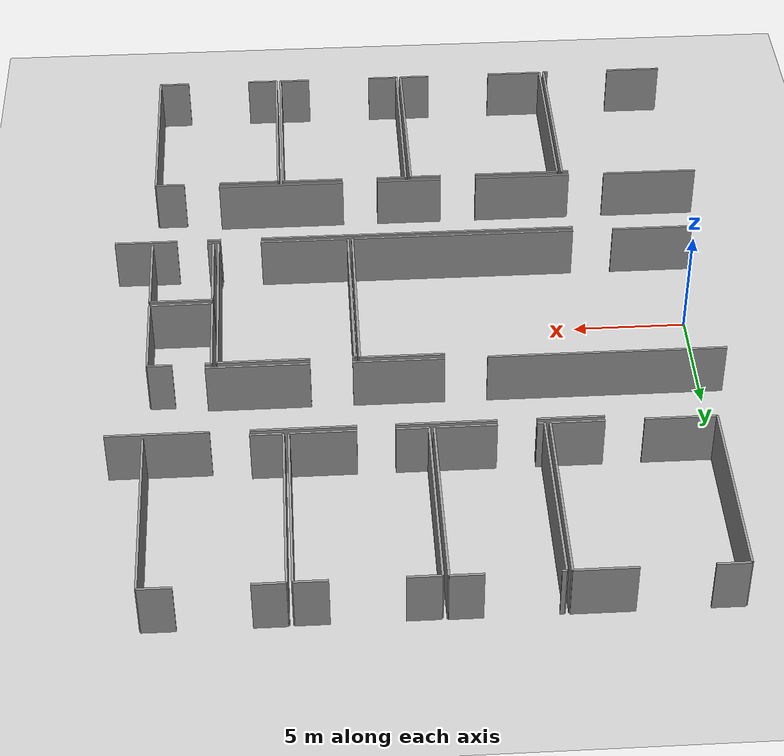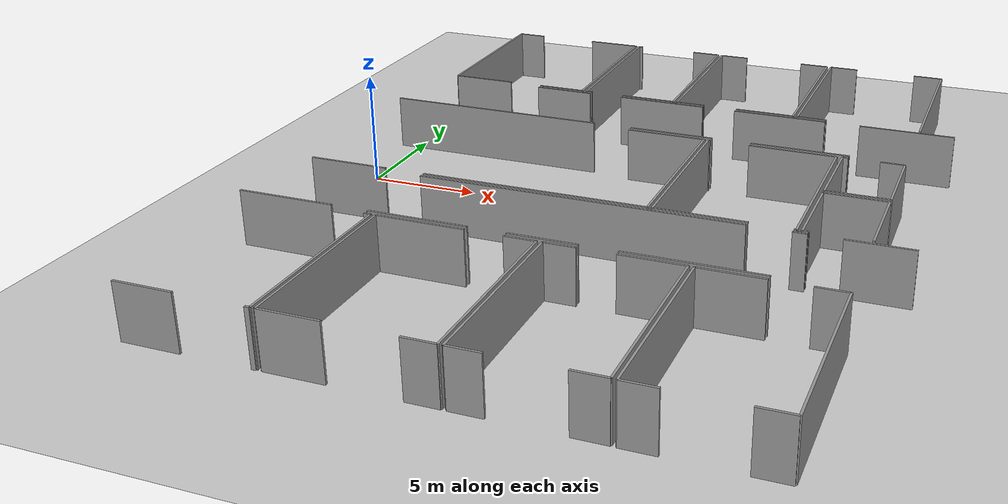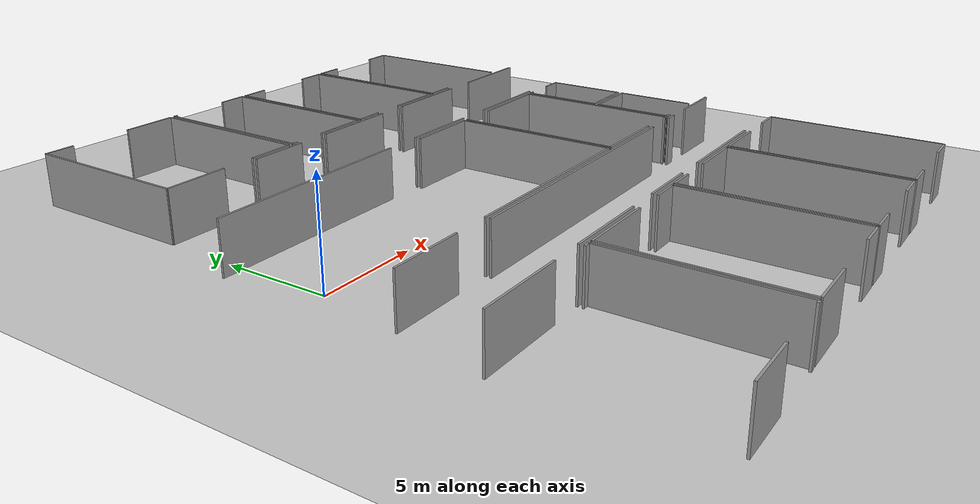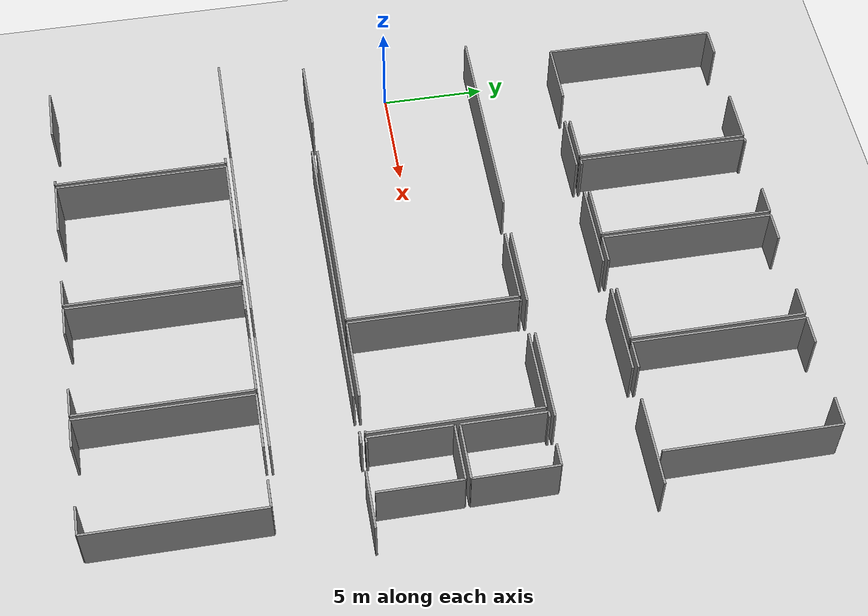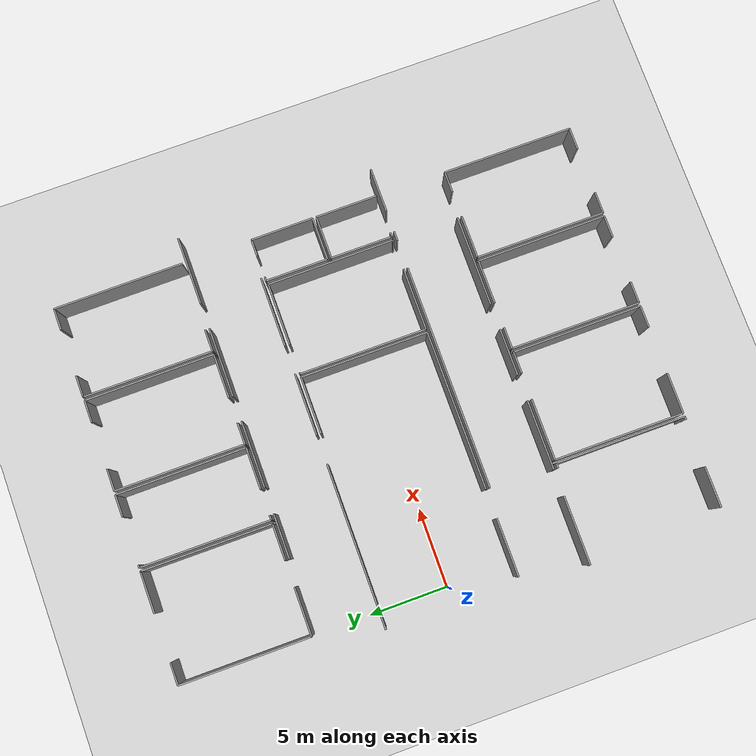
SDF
<sdf version="1.6">
 <world name="default">
  <model name="ground_plane">
   <static>1</static>
   <link name="link">
    <collision name="collision">
     <geometry><plane><normal>0 0 1</normal><size>100 100</size></plane></geometry>
     <surface><friction><ode><mu>100</mu><mu2>50</mu2></ode></friction></surface>
    </collision>
    <visual name="visual">
     <cast_shadows>0</cast_shadows>
     <geometry><plane><normal>0 0 1</normal><size>100 100</size></plane></geometry>
     <material>
      <script><uri>file://media/materials/scripts/gazebo.material</uri><name>Gazebo/Grey</name></script>
     </material>
    </visual>
   </link>
  </model>
  <model name="50041184">
   <static>1</static>
   <link name="Wall_55">
    <collision name="Wall_55_Collision">
     <geometry><box><size>4.4750255489 0.1 2.5</size></box></geometry>
     <pose>2.23751277445 0 1.25 0 0 0</pose>
    </collision>
    <visual name="Wall_55_Visual">
     <pose>2.23751277445 0 1.25 0 0 0</pose>
     <geometry><box><size>4.4750255489 0.1 2.5</size></box></geometry>
     <material>
      <script><uri>file://media/materials/scripts/gazebo.material</uri><name>Gazebo/Grey</name></script>
      <ambient>1 1 1 1</ambient>
     </material>
    </visual>
    <pose>93.0150373554 -12.4580902749 0 0 0 3.14159265359</pose>
   </link>
   <link name="Wall_56">
    <collision name="Wall_56_Collision">
     <geometry><box><size>3.95173319961 0.1 2.5</size></box></geometry>
     <pose>1.97586659981 0 1.25 0 0 0</pose>
    </collision>
    <visual name="Wall_56_Visual">
     <pose>1.97586659981 0 1.25 0 0 0</pose>
     <geometry><box><size>3.95173319961 0.1 2.5</size></box></geometry>
     <material>
      <script><uri>file://media/materials/scripts/gazebo.material</uri><name>Gazebo/Grey</name></script>
      <ambient>1 1 1 1</ambient>
     </material>
    </visual>
    <pose>86.71978723 -12.4580902749 0 0 0 3.14159265359</pose>
   </link>
   <link name="Wall_57">
    <collision name="Wall_57_Collision">
     <geometry><box><size>10.3277242115 0.1 2.5</size></box></geometry>
     <pose>5.16386210574 0 1.25 0 0 0</pose>
    </collision>
    <visual name="Wall_57_Visual">
     <pose>5.16386210574 0 1.25 0 0 0</pose>
     <geometry><box><size>10.3277242115 0.1 2.5</size></box></geometry>
     <material>
      <script><uri>file://media/materials/scripts/gazebo.material</uri><name>Gazebo/Grey</name></script>
      <ambient>1 1 1 1</ambient>
     </material>
    </visual>
    <pose>80.9380542208 -12.4580902749 0 0 0 3.14159265359</pose>
   </link>
   <link name="Wall_66">
    <collision name="Wall_66_Collision">
     <geometry><box><size>2.83392894548 0.1 2.5</size></box></geometry>
     <pose>1.41696447274 0 1.25 0 0 0</pose>
    </collision>
    <visual name="Wall_66_Visual">
     <pose>1.41696447274 0 1.25 0 0 0</pose>
     <geometry><box><size>2.83392894548 0.1 2.5</size></box></geometry>
     <material>
      <script><uri>file://media/materials/scripts/gazebo.material</uri><name>Gazebo/Grey</name></script>
      <ambient>1 1 1 1</ambient>
     </material>
    </visual>
    <pose>76.3963793552 -8.4970896465 0 0 0 0.0</pose>
   </link>
   <link name="Wall_67">
    <collision name="Wall_67_Collision">
     <geometry><box><size>4.22366241169 0.1 2.5</size></box></geometry>
     <pose>2.11183120584 0 1.25 0 0 0</pose>
    </collision>
    <visual name="Wall_67_Visual">
     <pose>2.11183120584 0 1.25 0 0 0</pose>
     <geometry><box><size>4.22366241169 0.1 2.5</size></box></geometry>
     <material>
      <script><uri>file://media/materials/scripts/gazebo.material</uri><name>Gazebo/Grey</name></script>
      <ambient>1 1 1 1</ambient>
     </material>
    </visual>
    <pose>80.8800375775 -8.4970896465 0 0 0 0.0</pose>
   </link>
   <link name="Wall_68">
    <collision name="Wall_68_Collision">
     <geometry><box><size>4.4171358567 0.1 2.5</size></box></geometry>
     <pose>2.20856792835 0 1.25 0 0 0</pose>
    </collision>
    <visual name="Wall_68_Visual">
     <pose>2.20856792835 0 1.25 0 0 0</pose>
     <geometry><box><size>4.4171358567 0.1 2.5</size></box></geometry>
     <material>
      <script><uri>file://media/materials/scripts/gazebo.material</uri><name>Gazebo/Grey</name></script>
      <ambient>1 1 1 1</ambient>
     </material>
    </visual>
    <pose>86.6980785954 -8.4970896465 0 0 0 0.0</pose>
   </link>
   <link name="Wall_69">
    <collision name="Wall_69_Collision">
     <geometry><box><size>4.34896312706 0.1 2.5</size></box></geometry>
     <pose>2.17448156353 0 1.25 0 0 0</pose>
    </collision>
    <visual name="Wall_69_Visual">
     <pose>2.17448156353 0 1.25 0 0 0</pose>
     <geometry><box><size>4.34896312706 0.1 2.5</size></box></geometry>
     <material>
      <script><uri>file://media/materials/scripts/gazebo.material</uri><name>Gazebo/Grey</name></script>
      <ambient>1 1 1 1</ambient>
     </material>
    </visual>
    <pose>92.7655784843 -8.4970896465 0 0 0 0.0</pose>
   </link>
   <link name="Wall_87">
    <collision name="Wall_87_Collision">
     <geometry><box><size>2.29121308104 0.1 2.5</size></box></geometry>
     <pose>1.14560654052 0 1.25 0 0 0</pose>
    </collision>
    <visual name="Wall_87_Visual">
     <pose>1.14560654052 0 1.25 0 0 0</pose>
     <geometry><box><size>2.29121308104 0.1 2.5</size></box></geometry>
     <material>
      <script><uri>file://media/materials/scripts/gazebo.material</uri><name>Gazebo/Grey</name></script>
      <ambient>1 1 1 1</ambient>
     </material>
    </visual>
    <pose>78.6938130391 -8.24306053662 0 0 0 3.14159265359</pose>
   </link>
   <link name="Wall_88">
    <collision name="Wall_88_Collision">
     <geometry><box><size>3.03578116173 0.1 2.5</size></box></geometry>
     <pose>1.51789058086 0 1.25 0 0 0</pose>
    </collision>
    <visual name="Wall_88_Visual">
     <pose>1.51789058086 0 1.25 0 0 0</pose>
     <geometry><box><size>3.03578116173 0.1 2.5</size></box></geometry>
     <material>
      <script><uri>file://media/materials/scripts/gazebo.material</uri><name>Gazebo/Grey</name></script>
      <ambient>1 1 1 1</ambient>
     </material>
    </visual>
    <pose>74.7606146971 -8.24306053662 0 0 0 3.14159265359</pose>
   </link>
   <link name="Wall_89">
    <collision name="Wall_89_Collision">
     <geometry><box><size>8.22858811357 0.1 2.5</size></box></geometry>
     <pose>4.11429405679 0 1.25 0 0 0</pose>
    </collision>
    <visual name="Wall_89_Visual">
     <pose>4.11429405679 0 1.25 0 0 0</pose>
     <geometry><box><size>8.22858811357 0.1 2.5</size></box></geometry>
     <material>
      <script><uri>file://media/materials/scripts/gazebo.material</uri><name>Gazebo/Grey</name></script>
      <ambient>1 1 1 1</ambient>
     </material>
    </visual>
    <pose>71.7248335354 -8.24306053662 0 0 0 1.57079632679</pose>
   </link>
   <link name="Wall_90">
    <collision name="Wall_90_Collision">
     <geometry><box><size>1.39696967773 0.1 2.5</size></box></geometry>
     <pose>0.698484838867 0 1.25 0 0 0</pose>
    </collision>
    <visual name="Wall_90_Visual">
     <pose>0.698484838867 0 1.25 0 0 0</pose>
     <geometry><box><size>1.39696967773 0.1 2.5</size></box></geometry>
     <material>
      <script><uri>file://media/materials/scripts/gazebo.material</uri><name>Gazebo/Grey</name></script>
      <ambient>1 1 1 1</ambient>
     </material>
    </visual>
    <pose>71.7248335354 -0.0144724230518 0 0 0 0.0</pose>
   </link>
   <link name="Wall_91">
    <collision name="Wall_91_Collision">
     <geometry><box><size>2.612526263 0.1 2.5</size></box></geometry>
     <pose>1.3062631315 0 1.25 0 0 0</pose>
    </collision>
    <visual name="Wall_91_Visual">
     <pose>1.3062631315 0 1.25 0 0 0</pose>
     <geometry><box><size>2.612526263 0.1 2.5</size></box></geometry>
     <material>
      <script><uri>file://media/materials/scripts/gazebo.material</uri><name>Gazebo/Grey</name></script>
      <ambient>1 1 1 1</ambient>
     </material>
    </visual>
    <pose>76.0971556611 -0.0144724230518 0 0 0 0.0</pose>
   </link>
   <link name="Wall_92">
    <collision name="Wall_92_Collision">
     <geometry><box><size>8.22860341518 0.1 2.5</size></box></geometry>
     <pose>4.11430170759 0 1.25 0 0 0</pose>
    </collision>
    <visual name="Wall_92_Visual">
     <pose>4.11430170759 0 1.25 0 0 0</pose>
     <geometry><box><size>8.22860341518 0.1 2.5</size></box></geometry>
     <material>
      <script><uri>file://media/materials/scripts/gazebo.material</uri><name>Gazebo/Grey</name></script>
      <ambient>1 1 1 1</ambient>
     </material>
    </visual>
    <pose>78.7096819241 -0.0144724230518 0 0 0 -1.57272483081</pose>
   </link>
   <link name="Wall_99">
    <collision name="Wall_99_Collision">
     <geometry><box><size>2.62750649037 0.1 2.5</size></box></geometry>
     <pose>1.31375324519 0 1.25 0 0 0</pose>
    </collision>
    <visual name="Wall_99_Visual">
     <pose>1.31375324519 0 1.25 0 0 0</pose>
     <geometry><box><size>2.62750649037 0.1 2.5</size></box></geometry>
     <material>
      <script><uri>file://media/materials/scripts/gazebo.material</uri><name>Gazebo/Grey</name></script>
      <ambient>1 1 1 1</ambient>
     </material>
    </visual>
    <pose>83.5086866276 -8.24559955821 0 0 0 3.14159265359</pose>
   </link>
   <link name="Wall_100">
    <collision name="Wall_100_Collision">
     <geometry><box><size>0.303032226532 0.1 2.5</size></box></geometry>
     <pose>0.151516113266 0 1.25 0 0 0</pose>
    </collision>
    <visual name="Wall_100_Visual">
     <pose>0.151516113266 0 1.25 0 0 0</pose>
     <geometry><box><size>0.303032226532 0.1 2.5</size></box></geometry>
     <material>
      <script><uri>file://media/materials/scripts/gazebo.material</uri><name>Gazebo/Grey</name></script>
      <ambient>1 1 1 1</ambient>
     </material>
    </visual>
    <pose>79.2303083007 -8.24559955821 0 0 0 3.14159265359</pose>
   </link>
   <link name="Wall_101">
    <collision name="Wall_101_Collision">
     <geometry><box><size>8.23252359703 0.1 2.5</size></box></geometry>
     <pose>4.11626179852 0 1.25 0 0 0</pose>
    </collision>
    <visual name="Wall_101_Visual">
     <pose>4.11626179852 0 1.25 0 0 0</pose>
     <geometry><box><size>8.23252359703 0.1 2.5</size></box></geometry>
     <material>
      <script><uri>file://media/materials/scripts/gazebo.material</uri><name>Gazebo/Grey</name></script>
      <ambient>1 1 1 1</ambient>
     </material>
    </visual>
    <pose>78.9272760742 -8.24559955821 0 0 0 1.57079632679</pose>
   </link>
   <link name="Wall_102">
    <collision name="Wall_102_Collision">
     <geometry><box><size>0.183063456497 0.1 2.5</size></box></geometry>
     <pose>0.0915317282485 0 1.25 0 0 0</pose>
    </collision>
    <visual name="Wall_102_Visual">
     <pose>0.0915317282485 0 1.25 0 0 0</pose>
     <geometry><box><size>0.183063456497 0.1 2.5</size></box></geometry>
     <material>
      <script><uri>file://media/materials/scripts/gazebo.material</uri><name>Gazebo/Grey</name></script>
      <ambient>1 1 1 1</ambient>
     </material>
    </visual>
    <pose>78.9272760742 -0.0130759611784 0 0 0 0.0</pose>
   </link>
   <link name="Wall_103">
    <collision name="Wall_103_Collision">
     <geometry><box><size>1.39404980291 0.1 2.5</size></box></geometry>
     <pose>0.697024901454 0 1.25 0 0 0</pose>
    </collision>
    <visual name="Wall_103_Visual">
     <pose>0.697024901454 0 1.25 0 0 0</pose>
     <geometry><box><size>1.39404980291 0.1 2.5</size></box></geometry>
     <material>
      <script><uri>file://media/materials/scripts/gazebo.material</uri><name>Gazebo/Grey</name></script>
      <ambient>1 1 1 1</ambient>
     </material>
    </visual>
    <pose>82.0961019671 -0.0130759611784 0 0 0 0.0</pose>
   </link>
   <link name="Wall_104">
    <collision name="Wall_104_Collision">
     <geometry><box><size>8.23254446187 0.1 2.5</size></box></geometry>
     <pose>4.11627223093 0 1.25 0 0 0</pose>
    </collision>
    <visual name="Wall_104_Visual">
     <pose>4.11627223093 0 1.25 0 0 0</pose>
     <geometry><box><size>8.23254446187 0.1 2.5</size></box></geometry>
     <material>
      <script><uri>file://media/materials/scripts/gazebo.material</uri><name>Gazebo/Grey</name></script>
      <ambient>1 1 1 1</ambient>
     </material>
    </visual>
    <pose>83.49015177 -0.0130759611784 0 0 0 -1.5685449119</pose>
   </link>
   <link name="Wall_105">
    <collision name="Wall_105_Collision">
     <geometry><box><size>2.80473019722 0.1 2.5</size></box></geometry>
     <pose>1.40236509861 0 1.25 0 0 0</pose>
    </collision>
    <visual name="Wall_105_Visual">
     <pose>1.40236509861 0 1.25 0 0 0</pose>
     <geometry><box><size>2.80473019722 0.1 2.5</size></box></geometry>
     <material>
      <script><uri>file://media/materials/scripts/gazebo.material</uri><name>Gazebo/Grey</name></script>
      <ambient>1 1 1 1</ambient>
     </material>
    </visual>
    <pose>89.519439384 -8.23836334668 0 0 0 3.14159265359</pose>
   </link>
   <link name="Wall_106">
    <collision name="Wall_106_Collision">
     <geometry><box><size>1.37107165754 0.1 2.5</size></box></geometry>
     <pose>0.685535828768 0 1.25 0 0 0</pose>
    </collision>
    <visual name="Wall_106_Visual">
     <pose>0.685535828768 0 1.25 0 0 0</pose>
     <geometry><box><size>1.37107165754 0.1 2.5</size></box></geometry>
     <material>
      <script><uri>file://media/materials/scripts/gazebo.material</uri><name>Gazebo/Grey</name></script>
      <ambient>1 1 1 1</ambient>
     </material>
    </visual>
    <pose>85.0894814683 -8.23836334668 0 0 0 3.14159265359</pose>
   </link>
   <link name="Wall_107">
    <collision name="Wall_107_Collision">
     <geometry><box><size>8.20332484877 0.1 2.5</size></box></geometry>
     <pose>4.10166242438 0 1.25 0 0 0</pose>
    </collision>
    <visual name="Wall_107_Visual">
     <pose>4.10166242438 0 1.25 0 0 0</pose>
     <geometry><box><size>8.20332484877 0.1 2.5</size></box></geometry>
     <material>
      <script><uri>file://media/materials/scripts/gazebo.material</uri><name>Gazebo/Grey</name></script>
      <ambient>1 1 1 1</ambient>
     </material>
    </visual>
    <pose>83.7184098108 -8.23836334668 0 0 0 1.57079632679</pose>
   </link>
   <link name="Wall_108">
    <collision name="Wall_108_Collision">
     <geometry><box><size>1.40725271517 0.1 2.5</size></box></geometry>
     <pose>0.703626357583 0 1.25 0 0 0</pose>
    </collision>
    <visual name="Wall_108_Visual">
     <pose>0.703626357583 0 1.25 0 0 0</pose>
     <geometry><box><size>1.40725271517 0.1 2.5</size></box></geometry>
     <material>
      <script><uri>file://media/materials/scripts/gazebo.material</uri><name>Gazebo/Grey</name></script>
      <ambient>1 1 1 1</ambient>
     </material>
    </visual>
    <pose>83.7184098108 -0.0350384979148 0 0 0 0.0</pose>
   </link>
   <link name="Wall_109">
    <collision name="Wall_109_Collision">
     <geometry><box><size>1.39404980291 0.1 2.5</size></box></geometry>
     <pose>0.697024901454 0 1.25 0 0 0</pose>
    </collision>
    <visual name="Wall_109_Visual">
     <pose>0.697024901454 0 1.25 0 0 0</pose>
     <geometry><box><size>1.39404980291 0.1 2.5</size></box></geometry>
     <material>
      <script><uri>file://media/materials/scripts/gazebo.material</uri><name>Gazebo/Grey</name></script>
      <ambient>1 1 1 1</ambient>
     </material>
    </visual>
    <pose>88.1005071696 -0.0350384979148 0 0 0 0.0</pose>
   </link>
   <link name="Wall_110">
    <collision name="Wall_110_Collision">
     <geometry><box><size>8.20336258548 0.1 2.5</size></box></geometry>
     <pose>4.10168129274 0 1.25 0 0 0</pose>
    </collision>
    <visual name="Wall_110_Visual">
     <pose>4.10168129274 0 1.25 0 0 0</pose>
     <geometry><box><size>8.20336258548 0.1 2.5</size></box></geometry>
     <material>
      <script><uri>file://media/materials/scripts/gazebo.material</uri><name>Gazebo/Grey</name></script>
      <ambient>1 1 1 1</ambient>
     </material>
    </visual>
    <pose>89.4945569725 -0.0350384979148 0 0 0 -1.56776312554</pose>
   </link>
   <link name="Wall_112">
    <collision name="Wall_112_Collision">
     <geometry><box><size>1.39849309069 0.1 2.5</size></box></geometry>
     <pose>0.699246545344 0 1.25 0 0 0</pose>
    </collision>
    <visual name="Wall_112_Visual">
     <pose>0.699246545344 0 1.25 0 0 0</pose>
     <geometry><box><size>1.39849309069 0.1 2.5</size></box></geometry>
     <material>
      <script><uri>file://media/materials/scripts/gazebo.material</uri><name>Gazebo/Grey</name></script>
      <ambient>1 1 1 1</ambient>
     </material>
    </visual>
    <pose>91.1305755327 -8.23163493948 0 0 0 3.14159265359</pose>
   </link>
   <link name="Wall_113">
    <collision name="Wall_113_Collision">
     <geometry><box><size>8.21538520131 0.1 2.5</size></box></geometry>
     <pose>4.10769260066 0 1.25 0 0 0</pose>
    </collision>
    <visual name="Wall_113_Visual">
     <pose>4.10769260066 0 1.25 0 0 0</pose>
     <geometry><box><size>8.21538520131 0.1 2.5</size></box></geometry>
     <material>
      <script><uri>file://media/materials/scripts/gazebo.material</uri><name>Gazebo/Grey</name></script>
      <ambient>1 1 1 1</ambient>
     </material>
    </visual>
    <pose>89.732082442 -8.23163493948 0 0 0 1.57079632679</pose>
   </link>
   <link name="Wall_114">
    <collision name="Wall_114_Collision">
     <geometry><box><size>1.37602274963 0.1 2.5</size></box></geometry>
     <pose>0.688011374817 0 1.25 0 0 0</pose>
    </collision>
    <visual name="Wall_114_Visual">
     <pose>0.688011374817 0 1.25 0 0 0</pose>
     <geometry><box><size>1.37602274963 0.1 2.5</size></box></geometry>
     <material>
      <script><uri>file://media/materials/scripts/gazebo.material</uri><name>Gazebo/Grey</name></script>
      <ambient>1 1 1 1</ambient>
     </material>
    </visual>
    <pose>89.732082442 -0.0162497381634 0 0 0 0.0</pose>
   </link>
   <link name="Wall_115">
    <collision name="Wall_115_Collision">
     <geometry><box><size>1.38859090649 0.1 2.5</size></box></geometry>
     <pose>0.694295453247 0 1.25 0 0 0</pose>
    </collision>
    <visual name="Wall_115_Visual">
     <pose>0.694295453247 0 1.25 0 0 0</pose>
     <geometry><box><size>1.38859090649 0.1 2.5</size></box></geometry>
     <material>
      <script><uri>file://media/materials/scripts/gazebo.material</uri><name>Gazebo/Grey</name></script>
      <ambient>1 1 1 1</ambient>
     </material>
    </visual>
    <pose>94.0938676281 -0.0162497381634 0 0 0 0.0</pose>
   </link>
   <link name="Wall_116">
    <collision name="Wall_116_Collision">
     <geometry><box><size>8.21543663936 0.1 2.5</size></box></geometry>
     <pose>4.10771831968 0 1.25 0 0 0</pose>
    </collision>
    <visual name="Wall_116_Visual">
     <pose>4.10771831968 0 1.25 0 0 0</pose>
     <geometry><box><size>8.21543663936 0.1 2.5</size></box></geometry>
     <material>
      <script><uri>file://media/materials/scripts/gazebo.material</uri><name>Gazebo/Grey</name></script>
      <ambient>1 1 1 1</ambient>
     </material>
    </visual>
    <pose>95.4824585346 -0.0162497381634 0 0 0 -1.56725763991</pose>
   </link>
   <link name="Wall_216">
    <collision name="Wall_216_Collision">
     <geometry><box><size>2.75458452085 0.1 2.5</size></box></geometry>
     <pose>1.37729226043 0 1.25 0 0 0</pose>
    </collision>
    <visual name="Wall_216_Visual">
     <pose>1.37729226043 0 1.25 0 0 0</pose>
     <geometry><box><size>2.75458452085 0.1 2.5</size></box></geometry>
     <material>
      <script><uri>file://media/materials/scripts/gazebo.material</uri><name>Gazebo/Grey</name></script>
      <ambient>1 1 1 1</ambient>
     </material>
    </visual>
    <pose>95.5044210713 -16.6690575787 0 0 0 3.14159265359</pose>
   </link>
   <link name="Wall_217">
    <collision name="Wall_217_Collision">
     <geometry><box><size>3.97331488311 0.1 2.5</size></box></geometry>
     <pose>1.98665744155 0 1.25 0 0 0</pose>
    </collision>
    <visual name="Wall_217_Visual">
     <pose>1.98665744155 0 1.25 0 0 0</pose>
     <geometry><box><size>3.97331488311 0.1 2.5</size></box></geometry>
     <material>
      <script><uri>file://media/materials/scripts/gazebo.material</uri><name>Gazebo/Grey</name></script>
      <ambient>1 1 1 1</ambient>
     </material>
    </visual>
    <pose>92.7498365505 -16.6690575787 0 0 0 1.57079632679</pose>
   </link>
   <link name="Wall_218">
    <collision name="Wall_218_Collision">
     <geometry><box><size>0.25872629982 0.1 2.5</size></box></geometry>
     <pose>0.12936314991 0 1.25 0 0 0</pose>
    </collision>
    <visual name="Wall_218_Visual">
     <pose>0.12936314991 0 1.25 0 0 0</pose>
     <geometry><box><size>0.25872629982 0.1 2.5</size></box></geometry>
     <material>
      <script><uri>file://media/materials/scripts/gazebo.material</uri><name>Gazebo/Grey</name></script>
      <ambient>1 1 1 1</ambient>
     </material>
    </visual>
    <pose>92.7498365505 -12.6957426956 0 0 0 0.0</pose>
   </link>
   <link name="Wall_219">
    <collision name="Wall_219_Collision">
     <geometry><box><size>1.06550040942 0.1 2.5</size></box></geometry>
     <pose>0.532750204709 0 1.25 0 0 0</pose>
    </collision>
    <visual name="Wall_219_Visual">
     <pose>0.532750204709 0 1.25 0 0 0</pose>
     <geometry><box><size>1.06550040942 0.1 2.5</size></box></geometry>
     <material>
      <script><uri>file://media/materials/scripts/gazebo.material</uri><name>Gazebo/Grey</name></script>
      <ambient>1 1 1 1</ambient>
     </material>
    </visual>
    <pose>94.4172120273 -12.6957426956 0 0 0 0.0</pose>
   </link>
   <link name="Wall_220">
    <collision name="Wall_220_Collision">
     <geometry><box><size>3.9733741864 0.1 2.5</size></box></geometry>
     <pose>1.9866870932 0 1.25 0 0 0</pose>
    </collision>
    <visual name="Wall_220_Visual">
     <pose>1.9866870932 0 1.25 0 0 0</pose>
     <geometry><box><size>3.9733741864 0.1 2.5</size></box></geometry>
     <material>
      <script><uri>file://media/materials/scripts/gazebo.material</uri><name>Gazebo/Grey</name></script>
      <ambient>1 1 1 1</ambient>
     </material>
    </visual>
    <pose>95.4827124368 -12.6957426956 0 0 0 -1.56533277326</pose>
   </link>
   <link name="Wall_222">
    <collision name="Wall_222_Collision">
     <geometry><box><size>0.269009337252 0.1 2.5</size></box></geometry>
     <pose>0.134504668626 0 1.25 0 0 0</pose>
    </collision>
    <visual name="Wall_222_Visual">
     <pose>0.134504668626 0 1.25 0 0 0</pose>
     <geometry><box><size>0.269009337252 0.1 2.5</size></box></geometry>
     <material>
      <script><uri>file://media/materials/scripts/gazebo.material</uri><name>Gazebo/Grey</name></script>
      <ambient>1 1 1 1</ambient>
     </material>
    </visual>
    <pose>93.0126252848 -20.8581892968 0 0 0 3.14159265359</pose>
   </link>
   <link name="Wall_223">
    <collision name="Wall_223_Collision">
     <geometry><box><size>3.94690905859 0.1 2.5</size></box></geometry>
     <pose>1.9734545293 0 1.25 0 0 0</pose>
    </collision>
    <visual name="Wall_223_Visual">
     <pose>1.9734545293 0 1.25 0 0 0</pose>
     <geometry><box><size>3.94690905859 0.1 2.5</size></box></geometry>
     <material>
      <script><uri>file://media/materials/scripts/gazebo.material</uri><name>Gazebo/Grey</name></script>
      <ambient>1 1 1 1</ambient>
     </material>
    </visual>
    <pose>92.7436159476 -20.8581892968 0 0 0 1.57079632679</pose>
   </link>
   <link name="Wall_224">
    <collision name="Wall_224_Collision">
     <geometry><box><size>2.75280720574 0.1 2.5</size></box></geometry>
     <pose>1.37640360287 0 1.25 0 0 0</pose>
    </collision>
    <visual name="Wall_224_Visual">
     <pose>1.37640360287 0 1.25 0 0 0</pose>
     <geometry><box><size>2.75280720574 0.1 2.5</size></box></geometry>
     <material>
      <script><uri>file://media/materials/scripts/gazebo.material</uri><name>Gazebo/Grey</name></script>
      <ambient>1 1 1 1</ambient>
     </material>
    </visual>
    <pose>92.7436159476 -16.9112802382 0 0 0 0.0</pose>
   </link>
   <link name="Wall_225">
    <collision name="Wall_225_Collision">
     <geometry><box><size>3.94691716198 0.1 2.5</size></box></geometry>
     <pose>1.97345858099 0 1.25 0 0 0</pose>
    </collision>
    <visual name="Wall_225_Visual">
     <pose>1.97345858099 0 1.25 0 0 0</pose>
     <geometry><box><size>3.94691716198 0.1 2.5</size></box></geometry>
     <material>
      <script><uri>file://media/materials/scripts/gazebo.material</uri><name>Gazebo/Grey</name></script>
      <ambient>1 1 1 1</ambient>
     </material>
    </visual>
    <pose>95.4964231533 -16.9112802382 0 0 0 -1.56876995453</pose>
   </link>
   <link name="Wall_226">
    <collision name="Wall_226_Collision">
     <geometry><box><size>0.101053059204 0.1 2.5</size></box></geometry>
     <pose>0.0505265296018 0 1.25 0 0 0</pose>
    </collision>
    <visual name="Wall_226_Visual">
     <pose>0.0505265296018 0 1.25 0 0 0</pose>
     <geometry><box><size>0.101053059204 0.1 2.5</size></box></geometry>
     <material>
      <script><uri>file://media/materials/scripts/gazebo.material</uri><name>Gazebo/Grey</name></script>
      <ambient>1 1 1 1</ambient>
     </material>
    </visual>
    <pose>92.5165004665 -20.8411778521 0 0 0 3.14159265359</pose>
   </link>
   <link name="Wall_227">
    <collision name="Wall_227_Collision">
     <geometry><box><size>3.97001415505 0.1 2.5</size></box></geometry>
     <pose>1.98500707752 0 1.25 0 0 0</pose>
    </collision>
    <visual name="Wall_227_Visual">
     <pose>1.98500707752 0 1.25 0 0 0</pose>
     <geometry><box><size>3.97001415505 0.1 2.5</size></box></geometry>
     <material>
      <script><uri>file://media/materials/scripts/gazebo.material</uri><name>Gazebo/Grey</name></script>
      <ambient>1 1 1 1</ambient>
     </material>
    </visual>
    <pose>90.5850667445 -20.8411778521 0 0 0 3.14159265359</pose>
   </link>
   <link name="Wall_228">
    <collision name="Wall_228_Collision">
     <geometry><box><size>8.0916078989 0.1 2.5</size></box></geometry>
     <pose>4.04580394945 0 1.25 0 0 0</pose>
    </collision>
    <visual name="Wall_228_Visual">
     <pose>4.04580394945 0 1.25 0 0 0</pose>
     <geometry><box><size>8.0916078989 0.1 2.5</size></box></geometry>
     <material>
      <script><uri>file://media/materials/scripts/gazebo.material</uri><name>Gazebo/Grey</name></script>
      <ambient>1 1 1 1</ambient>
     </material>
    </visual>
    <pose>86.6150525895 -20.8411778521 0 0 0 1.57079632679</pose>
   </link>
   <link name="Wall_229">
    <collision name="Wall_229_Collision">
     <geometry><box><size>0.0945785541542 0.1 2.5</size></box></geometry>
     <pose>0.0472892770771 0 1.25 0 0 0</pose>
    </collision>
    <visual name="Wall_229_Visual">
     <pose>0.0472892770771 0 1.25 0 0 0</pose>
     <geometry><box><size>0.0945785541542 0.1 2.5</size></box></geometry>
     <material>
      <script><uri>file://media/materials/scripts/gazebo.material</uri><name>Gazebo/Grey</name></script>
      <ambient>1 1 1 1</ambient>
     </material>
    </visual>
    <pose>86.6150525895 -12.7495699532 0 0 0 0.0</pose>
   </link>
   <link name="Wall_230">
    <collision name="Wall_230_Collision">
     <geometry><box><size>3.96188928596 0.1 2.5</size></box></geometry>
     <pose>1.98094464298 0 1.25 0 0 0</pose>
    </collision>
    <visual name="Wall_230_Visual">
     <pose>1.98094464298 0 1.25 0 0 0</pose>
     <geometry><box><size>3.96188928596 0.1 2.5</size></box></geometry>
     <material>
      <script><uri>file://media/materials/scripts/gazebo.material</uri><name>Gazebo/Grey</name></script>
      <ambient>1 1 1 1</ambient>
     </material>
    </visual>
    <pose>88.5327755949 -12.7495699532 0 0 0 0.0</pose>
   </link>
   <link name="Wall_231">
    <collision name="Wall_231_Collision">
     <geometry><box><size>8.09163736102 0.1 2.5</size></box></geometry>
     <pose>4.04581868051 0 1.25 0 0 0</pose>
    </collision>
    <visual name="Wall_231_Visual">
     <pose>4.04581868051 0 1.25 0 0 0</pose>
     <geometry><box><size>8.09163736102 0.1 2.5</size></box></geometry>
     <material>
      <script><uri>file://media/materials/scripts/gazebo.material</uri><name>Gazebo/Grey</name></script>
      <ambient>1 1 1 1</ambient>
     </material>
    </visual>
    <pose>92.4946648809 -12.7495699532 0 0 0 -1.56809778617</pose>
   </link>
   <link name="Wall_232">
    <collision name="Wall_232_Collision">
     <geometry><box><size>10.1032747031 0.1 2.5</size></box></geometry>
     <pose>5.05163735155 0 1.25 0 0 0</pose>
    </collision>
    <visual name="Wall_232_Visual">
     <pose>5.05163735155 0 1.25 0 0 0</pose>
     <geometry><box><size>10.1032747031 0.1 2.5</size></box></geometry>
     <material>
      <script><uri>file://media/materials/scripts/gazebo.material</uri><name>Gazebo/Grey</name></script>
      <ambient>1 1 1 1</ambient>
     </material>
    </visual>
    <pose>86.411296107 -20.8451133356 0 0 0 3.14159265359</pose>
   </link>
   <link name="Wall_233">
    <collision name="Wall_233_Collision">
     <geometry><box><size>3.65441377165 0.1 2.5</size></box></geometry>
     <pose>1.82720688583 0 1.25 0 0 0</pose>
    </collision>
    <visual name="Wall_233_Visual">
     <pose>1.82720688583 0 1.25 0 0 0</pose>
     <geometry><box><size>3.65441377165 0.1 2.5</size></box></geometry>
     <material>
      <script><uri>file://media/materials/scripts/gazebo.material</uri><name>Gazebo/Grey</name></script>
      <ambient>1 1 1 1</ambient>
     </material>
    </visual>
    <pose>74.4775137901 -20.8451133356 0 0 0 3.14159265359</pose>
   </link>
   <link name="Wall_236">
    <collision name="Wall_236_Collision">
     <geometry><box><size>3.64768536444 0.1 2.5</size></box></geometry>
     <pose>1.82384268222 0 1.25 0 0 0</pose>
    </collision>
    <visual name="Wall_236_Visual">
     <pose>1.82384268222 0 1.25 0 0 0</pose>
     <geometry><box><size>3.64768536444 0.1 2.5</size></box></geometry>
     <material>
      <script><uri>file://media/materials/scripts/gazebo.material</uri><name>Gazebo/Grey</name></script>
      <ambient>1 1 1 1</ambient>
     </material>
    </visual>
    <pose>82.7636107426 -12.7370017964 0 0 0 0.0</pose>
   </link>
   <link name="Wall_237">
    <collision name="Wall_237_Collision">
     <geometry><box><size>8.10811153922 0.1 2.5</size></box></geometry>
     <pose>4.05405576961 0 1.25 0 0 0</pose>
    </collision>
    <visual name="Wall_237_Visual">
     <pose>4.05405576961 0 1.25 0 0 0</pose>
     <geometry><box><size>8.10811153922 0.1 2.5</size></box></geometry>
     <material>
      <script><uri>file://media/materials/scripts/gazebo.material</uri><name>Gazebo/Grey</name></script>
      <ambient>1 1 1 1</ambient>
     </material>
    </visual>
    <pose>86.411296107 -12.7370017964 0 0 0 -1.57079632679</pose>
   </link>
   <link name="Wall_368">
    <collision name="Wall_368_Collision">
     <geometry><box><size>14.2759027809 0.1 2.5</size></box></geometry>
     <pose>7.13795139043 0 1.25 0 0 0</pose>
    </collision>
    <visual name="Wall_368_Visual">
     <pose>7.13795139043 0 1.25 0 0 0</pose>
     <geometry><box><size>14.2759027809 0.1 2.5</size></box></geometry>
     <material>
      <script><uri>file://media/materials/scripts/gazebo.material</uri><name>Gazebo/Grey</name></script>
      <ambient>1 1 1 1</ambient>
     </material>
    </visual>
    <pose>76.295326296 -21.0927948915 0 0 0 0.0</pose>
   </link>
   <link name="Wall_369">
    <collision name="Wall_369_Collision">
     <geometry><box><size>0.600986409887 0.1 2.5</size></box></geometry>
     <pose>0.300493204943 0 1.25 0 0 0</pose>
    </collision>
    <visual name="Wall_369_Visual">
     <pose>0.300493204943 0 1.25 0 0 0</pose>
     <geometry><box><size>0.600986409887 0.1 2.5</size></box></geometry>
     <material>
      <script><uri>file://media/materials/scripts/gazebo.material</uri><name>Gazebo/Grey</name></script>
      <ambient>1 1 1 1</ambient>
     </material>
    </visual>
    <pose>92.4075764404 -21.0927948915 0 0 0 0.0</pose>
   </link>
   <link name="Wall_370">
    <collision name="Wall_370_Collision">
     <geometry><box><size>2.81831396271 0.1 2.5</size></box></geometry>
     <pose>1.40915698136 0 1.25 0 0 0</pose>
    </collision>
    <visual name="Wall_370_Visual">
     <pose>1.40915698136 0 1.25 0 0 0</pose>
     <geometry><box><size>2.81831396271 0.1 2.5</size></box></geometry>
     <material>
      <script><uri>file://media/materials/scripts/gazebo.material</uri><name>Gazebo/Grey</name></script>
      <ambient>1 1 1 1</ambient>
     </material>
    </visual>
    <pose>94.3949955884 -21.0927948915 0 0 0 0.0</pose>
   </link>
   <link name="Wall_384">
    <collision name="Wall_384_Collision">
     <geometry><box><size>5.80763102938 0.1 2.5</size></box></geometry>
     <pose>2.90381551469 0 1.25 0 0 0</pose>
    </collision>
    <visual name="Wall_384_Visual">
     <pose>2.90381551469 0 1.25 0 0 0</pose>
     <geometry><box><size>5.80763102938 0.1 2.5</size></box></geometry>
     <material>
      <script><uri>file://media/materials/scripts/gazebo.material</uri><name>Gazebo/Grey</name></script>
      <ambient>1 1 1 1</ambient>
     </material>
    </visual>
    <pose>92.5165004665 -25.0634438019 0 0 0 3.14159265359</pose>
   </link>
   <link name="Wall_385">
    <collision name="Wall_385_Collision">
     <geometry><box><size>2.98550853429 0.1 2.5</size></box></geometry>
     <pose>1.49275426714 0 1.25 0 0 0</pose>
    </collision>
    <visual name="Wall_385_Visual">
     <pose>1.49275426714 0 1.25 0 0 0</pose>
     <geometry><box><size>2.98550853429 0.1 2.5</size></box></geometry>
     <material>
      <script><uri>file://media/materials/scripts/gazebo.material</uri><name>Gazebo/Grey</name></script>
      <ambient>1 1 1 1</ambient>
     </material>
    </visual>
    <pose>85.0866885446 -25.0634438019 0 0 0 3.14159265359</pose>
   </link>
   <link name="Wall_386">
    <collision name="Wall_386_Collision">
     <geometry><box><size>4.41561244374 0.1 2.5</size></box></geometry>
     <pose>2.20780622187 0 1.25 0 0 0</pose>
    </collision>
    <visual name="Wall_386_Visual">
     <pose>2.20780622187 0 1.25 0 0 0</pose>
     <geometry><box><size>4.41561244374 0.1 2.5</size></box></geometry>
     <material>
      <script><uri>file://media/materials/scripts/gazebo.material</uri><name>Gazebo/Grey</name></script>
      <ambient>1 1 1 1</ambient>
     </material>
    </visual>
    <pose>80.4376130658 -25.0634438019 0 0 0 3.14159265359</pose>
   </link>
   <link name="Wall_387">
    <collision name="Wall_387_Collision">
     <geometry><box><size>4.34947093138 0.1 2.5</size></box></geometry>
     <pose>2.17473546569 0 1.25 0 0 0</pose>
    </collision>
    <visual name="Wall_387_Visual">
     <pose>2.17473546569 0 1.25 0 0 0</pose>
     <geometry><box><size>4.34947093138 0.1 2.5</size></box></geometry>
     <material>
      <script><uri>file://media/materials/scripts/gazebo.material</uri><name>Gazebo/Grey</name></script>
      <ambient>1 1 1 1</ambient>
     </material>
    </visual>
    <pose>74.3632578186 -25.0634438019 0 0 0 3.14159265359</pose>
   </link>
   <link name="Wall_416">
    <collision name="Wall_416_Collision">
     <geometry><box><size>0.205152944313 0.1 2.5</size></box></geometry>
     <pose>0.102576472156 0 1.25 0 0 0</pose>
    </collision>
    <visual name="Wall_416_Visual">
     <pose>0.102576472156 0 1.25 0 0 0</pose>
     <geometry><box><size>0.205152944313 0.1 2.5</size></box></geometry>
     <material>
      <script><uri>file://media/materials/scripts/gazebo.material</uri><name>Gazebo/Grey</name></script>
      <ambient>1 1 1 1</ambient>
     </material>
    </visual>
    <pose>76.332015158 -33.5930329248 0 0 0 3.14159265359</pose>
   </link>
   <link name="Wall_417">
    <collision name="Wall_417_Collision">
     <geometry><box><size>2.58396227014 0.1 2.5</size></box></geometry>
     <pose>1.29198113507 0 1.25 0 0 0</pose>
    </collision>
    <visual name="Wall_417_Visual">
     <pose>1.29198113507 0 1.25 0 0 0</pose>
     <geometry><box><size>2.58396227014 0.1 2.5</size></box></geometry>
     <material>
      <script><uri>file://media/materials/scripts/gazebo.material</uri><name>Gazebo/Grey</name></script>
      <ambient>1 1 1 1</ambient>
     </material>
    </visual>
    <pose>73.1290394247 -33.5930329248 0 0 0 3.14159265359</pose>
   </link>
   <link name="Wall_420">
    <collision name="Wall_420_Collision">
     <geometry><box><size>0.304682590564 0.1 2.5</size></box></geometry>
     <pose>0.152341295282 0 1.25 0 0 0</pose>
    </collision>
    <visual name="Wall_420_Visual">
     <pose>0.152341295282 0 1.25 0 0 0</pose>
     <geometry><box><size>0.304682590564 0.1 2.5</size></box></geometry>
     <material>
      <script><uri>file://media/materials/scripts/gazebo.material</uri><name>Gazebo/Grey</name></script>
      <ambient>1 1 1 1</ambient>
     </material>
    </visual>
    <pose>76.0124792911 -25.3334687478 0 0 0 0.0</pose>
   </link>
   <link name="Wall_421">
    <collision name="Wall_421_Collision">
     <geometry><box><size>8.25957753235 0.1 2.5</size></box></geometry>
     <pose>4.12978876617 0 1.25 0 0 0</pose>
    </collision>
    <visual name="Wall_421_Visual">
     <pose>4.12978876617 0 1.25 0 0 0</pose>
     <geometry><box><size>8.25957753235 0.1 2.5</size></box></geometry>
     <material>
      <script><uri>file://media/materials/scripts/gazebo.material</uri><name>Gazebo/Grey</name></script>
      <ambient>1 1 1 1</ambient>
     </material>
    </visual>
    <pose>76.3171618817 -25.3334687478 0 0 0 -1.56899801638</pose>
   </link>
   <link name="Wall_422">
    <collision name="Wall_422_Collision">
     <geometry><box><size>1.39392285183 0.1 2.5</size></box></geometry>
     <pose>0.696961425915 0 1.25 0 0 0</pose>
    </collision>
    <visual name="Wall_422_Visual">
     <pose>0.696961425915 0 1.25 0 0 0</pose>
     <geometry><box><size>1.39392285183 0.1 2.5</size></box></geometry>
     <material>
      <script><uri>file://media/materials/scripts/gazebo.material</uri><name>Gazebo/Grey</name></script>
      <ambient>1 1 1 1</ambient>
     </material>
    </visual>
    <pose>83.5260789255 -33.580591719 0 0 0 3.14159265359</pose>
   </link>
   <link name="Wall_423">
    <collision name="Wall_423_Collision">
     <geometry><box><size>2.59602262268 0.1 2.5</size></box></geometry>
     <pose>1.29801131134 0 1.25 0 0 0</pose>
    </collision>
    <visual name="Wall_423_Visual">
     <pose>1.29801131134 0 1.25 0 0 0</pose>
     <geometry><box><size>2.59602262268 0.1 2.5</size></box></geometry>
     <material>
      <script><uri>file://media/materials/scripts/gazebo.material</uri><name>Gazebo/Grey</name></script>
      <ambient>1 1 1 1</ambient>
     </material>
    </visual>
    <pose>79.1354758444 -33.580591719 0 0 0 3.14159265359</pose>
   </link>
   <link name="Wall_424">
    <collision name="Wall_424_Collision">
     <geometry><box><size>8.25258186758 0.1 2.5</size></box></geometry>
     <pose>4.12629093379 0 1.25 0 0 0</pose>
    </collision>
    <visual name="Wall_424_Visual">
     <pose>4.12629093379 0 1.25 0 0 0</pose>
     <geometry><box><size>8.25258186758 0.1 2.5</size></box></geometry>
     <material>
      <script><uri>file://media/materials/scripts/gazebo.material</uri><name>Gazebo/Grey</name></script>
      <ambient>1 1 1 1</ambient>
     </material>
    </visual>
    <pose>76.5394532217 -33.580591719 0 0 0 1.57079632679</pose>
   </link>
   <link name="Wall_425">
    <collision name="Wall_425_Collision">
     <geometry><box><size>3.89003497502 0.1 2.5</size></box></geometry>
     <pose>1.94501748751 0 1.25 0 0 0</pose>
    </collision>
    <visual name="Wall_425_Visual">
     <pose>1.94501748751 0 1.25 0 0 0</pose>
     <geometry><box><size>3.89003497502 0.1 2.5</size></box></geometry>
     <material>
      <script><uri>file://media/materials/scripts/gazebo.material</uri><name>Gazebo/Grey</name></script>
      <ambient>1 1 1 1</ambient>
     </material>
    </visual>
    <pose>76.5394532217 -25.3280098514 0 0 0 0.0</pose>
   </link>
   <link name="Wall_426">
    <collision name="Wall_426_Collision">
     <geometry><box><size>1.39646187342 0.1 2.5</size></box></geometry>
     <pose>0.698230936709 0 1.25 0 0 0</pose>
    </collision>
    <visual name="Wall_426_Visual">
     <pose>0.698230936709 0 1.25 0 0 0</pose>
     <geometry><box><size>1.39646187342 0.1 2.5</size></box></geometry>
     <material>
      <script><uri>file://media/materials/scripts/gazebo.material</uri><name>Gazebo/Grey</name></script>
      <ambient>1 1 1 1</ambient>
     </material>
    </visual>
    <pose>82.0934359944 -25.3280098514 0 0 0 0.0</pose>
   </link>
   <link name="Wall_427">
    <collision name="Wall_427_Collision">
     <geometry><box><size>8.25266117989 0.1 2.5</size></box></geometry>
     <pose>4.12633058994 0 1.25 0 0 0</pose>
    </collision>
    <visual name="Wall_427_Visual">
     <pose>4.12633058994 0 1.25 0 0 0</pose>
     <geometry><box><size>8.25266117989 0.1 2.5</size></box></geometry>
     <material>
      <script><uri>file://media/materials/scripts/gazebo.material</uri><name>Gazebo/Grey</name></script>
      <ambient>1 1 1 1</ambient>
     </material>
    </visual>
    <pose>83.4898978679 -25.3280098514 0 0 0 -1.5664121442</pose>
   </link>
   <link name="Wall_428">
    <collision name="Wall_428_Collision">
     <geometry><box><size>1.41398112237 0.1 2.5</size></box></geometry>
     <pose>0.706990561187 0 1.25 0 0 0</pose>
    </collision>
    <visual name="Wall_428_Visual">
     <pose>0.706990561187 0 1.25 0 0 0</pose>
     <geometry><box><size>1.41398112237 0.1 2.5</size></box></geometry>
     <material>
      <script><uri>file://media/materials/scripts/gazebo.material</uri><name>Gazebo/Grey</name></script>
      <ambient>1 1 1 1</ambient>
     </material>
    </visual>
    <pose>89.5311188833 -33.5781796485 0 0 0 3.14159265359</pose>
   </link>
   <link name="Wall_429">
    <collision name="Wall_429_Collision">
     <geometry><box><size>1.40242857415 0.1 2.5</size></box></geometry>
     <pose>0.701214287074 0 1.25 0 0 0</pose>
    </collision>
    <visual name="Wall_429_Visual">
     <pose>0.701214287074 0 1.25 0 0 0</pose>
     <geometry><box><size>1.40242857415 0.1 2.5</size></box></geometry>
     <material>
      <script><uri>file://media/materials/scripts/gazebo.material</uri><name>Gazebo/Grey</name></script>
      <ambient>1 1 1 1</ambient>
     </material>
    </visual>
    <pose>85.1288363029 -33.5781796485 0 0 0 3.14159265359</pose>
   </link>
   <link name="Wall_430">
    <collision name="Wall_430_Collision">
     <geometry><box><size>8.26146844314 0.1 2.5</size></box></geometry>
     <pose>4.13073422157 0 1.25 0 0 0</pose>
    </collision>
    <visual name="Wall_430_Visual">
     <pose>4.13073422157 0 1.25 0 0 0</pose>
     <geometry><box><size>8.26146844314 0.1 2.5</size></box></geometry>
     <material>
      <script><uri>file://media/materials/scripts/gazebo.material</uri><name>Gazebo/Grey</name></script>
      <ambient>1 1 1 1</ambient>
     </material>
    </visual>
    <pose>83.7264077288 -33.5781796485 0 0 0 1.57079632679</pose>
   </link>
   <link name="Wall_431">
    <collision name="Wall_431_Collision">
     <geometry><box><size>1.36904044027 0.1 2.5</size></box></geometry>
     <pose>0.684520220133 0 1.25 0 0 0</pose>
    </collision>
    <visual name="Wall_431_Visual">
     <pose>0.684520220133 0 1.25 0 0 0</pose>
     <geometry><box><size>1.36904044027 0.1 2.5</size></box></geometry>
     <material>
      <script><uri>file://media/materials/scripts/gazebo.material</uri><name>Gazebo/Grey</name></script>
      <ambient>1 1 1 1</ambient>
     </material>
    </visual>
    <pose>83.7264077288 -25.3167112053 0 0 0 0.0</pose>
   </link>
   <link name="Wall_432">
    <collision name="Wall_432_Collision">
     <geometry><box><size>2.79292374683 0.1 2.5</size></box></geometry>
     <pose>1.39646187342 0 1.25 0 0 0</pose>
    </collision>
    <visual name="Wall_432_Visual">
     <pose>1.39646187342 0 1.25 0 0 0</pose>
     <geometry><box><size>2.79292374683 0.1 2.5</size></box></geometry>
     <material>
      <script><uri>file://media/materials/scripts/gazebo.material</uri><name>Gazebo/Grey</name></script>
      <ambient>1 1 1 1</ambient>
     </material>
    </visual>
    <pose>86.7161056487 -25.3167112053 0 0 0 0.0</pose>
   </link>
   <link name="Wall_433">
    <collision name="Wall_433_Collision">
     <geometry><box><size>8.26149797448 0.1 2.5</size></box></geometry>
     <pose>4.13074898724 0 1.25 0 0 0</pose>
    </collision>
    <visual name="Wall_433_Visual">
     <pose>4.13074898724 0 1.25 0 0 0</pose>
     <geometry><box><size>8.26149797448 0.1 2.5</size></box></geometry>
     <material>
      <script><uri>file://media/materials/scripts/gazebo.material</uri><name>Gazebo/Grey</name></script>
      <ambient>1 1 1 1</ambient>
     </material>
    </visual>
    <pose>89.5090293955 -25.3167112053 0 0 0 -1.56812253638</pose>
   </link>
   <link name="Wall_434">
    <collision name="Wall_434_Collision">
     <geometry><box><size>1.39785833529 0.1 2.5</size></box></geometry>
     <pose>0.698929167645 0 1.25 0 0 0</pose>
    </collision>
    <visual name="Wall_434_Visual">
     <pose>0.698929167645 0 1.25 0 0 0</pose>
     <geometry><box><size>1.39785833529 0.1 2.5</size></box></geometry>
     <material>
      <script><uri>file://media/materials/scripts/gazebo.material</uri><name>Gazebo/Grey</name></script>
      <ambient>1 1 1 1</ambient>
     </material>
    </visual>
    <pose>95.4922337677 -33.5930329248 0 0 0 3.14159265359</pose>
   </link>
   <link name="Wall_435">
    <collision name="Wall_435_Collision">
     <geometry><box><size>1.39481150938 0.1 2.5</size></box></geometry>
     <pose>0.697405754692 0 1.25 0 0 0</pose>
    </collision>
    <visual name="Wall_435_Visual">
     <pose>0.697405754692 0 1.25 0 0 0</pose>
     <geometry><box><size>1.39481150938 0.1 2.5</size></box></geometry>
     <material>
      <script><uri>file://media/materials/scripts/gazebo.material</uri><name>Gazebo/Grey</name></script>
      <ambient>1 1 1 1</ambient>
     </material>
    </visual>
    <pose>91.1341301629 -33.5930329248 0 0 0 3.14159265359</pose>
   </link>
   <link name="Wall_436">
    <collision name="Wall_436_Collision">
     <geometry><box><size>8.25791381291 0.1 2.5</size></box></geometry>
     <pose>4.12895690646 0 1.25 0 0 0</pose>
    </collision>
    <visual name="Wall_436_Visual">
     <pose>4.12895690646 0 1.25 0 0 0</pose>
     <geometry><box><size>8.25791381291 0.1 2.5</size></box></geometry>
     <material>
      <script><uri>file://media/materials/scripts/gazebo.material</uri><name>Gazebo/Grey</name></script>
      <ambient>1 1 1 1</ambient>
     </material>
    </visual>
    <pose>89.7393186536 -33.5930329248 0 0 0 1.57079632679</pose>
   </link>
   <link name="Wall_437">
    <collision name="Wall_437_Collision">
     <geometry><box><size>2.75813915108 0.1 2.5</size></box></geometry>
     <pose>1.37906957554 0 1.25 0 0 0</pose>
    </collision>
    <visual name="Wall_437_Visual">
     <pose>1.37906957554 0 1.25 0 0 0</pose>
     <geometry><box><size>2.75813915108 0.1 2.5</size></box></geometry>
     <material>
      <script><uri>file://media/materials/scripts/gazebo.material</uri><name>Gazebo/Grey</name></script>
      <ambient>1 1 1 1</ambient>
     </material>
    </visual>
    <pose>89.7393186536 -25.3351191119 0 0 0 0.0</pose>
   </link>
   <link name="Wall_438">
    <collision name="Wall_438_Collision">
     <geometry><box><size>1.33438279559 0.1 2.5</size></box></geometry>
     <pose>0.667191397795 0 1.25 0 0 0</pose>
    </collision>
    <visual name="Wall_438_Visual">
     <pose>0.667191397795 0 1.25 0 0 0</pose>
     <geometry><box><size>1.33438279559 0.1 2.5</size></box></geometry>
     <material>
      <script><uri>file://media/materials/scripts/gazebo.material</uri><name>Gazebo/Grey</name></script>
      <ambient>1 1 1 1</ambient>
     </material>
    </visual>
    <pose>94.1483296412 -25.3351191119 0 0 0 0.0</pose>
   </link>
   <link name="Wall_439">
    <collision name="Wall_439_Collision">
     <geometry><box><size>8.25791930193 0.1 2.5</size></box></geometry>
     <pose>4.12895965097 0 1.25 0 0 0</pose>
    </collision>
    <visual name="Wall_439_Visual">
     <pose>4.12895965097 0 1.25 0 0 0</pose>
     <geometry><box><size>8.25791930193 0.1 2.5</size></box></geometry>
     <material>
      <script><uri>file://media/materials/scripts/gazebo.material</uri><name>Gazebo/Grey</name></script>
      <ambient>1 1 1 1</ambient>
     </material>
    </visual>
    <pose>95.4827124368 -25.3351191119 0 0 0 -1.56964333259</pose>
   </link>
   <pose>-71.6 16.80775925 0 0 0 0</pose>
  </model>
 </world>
</sdf>
